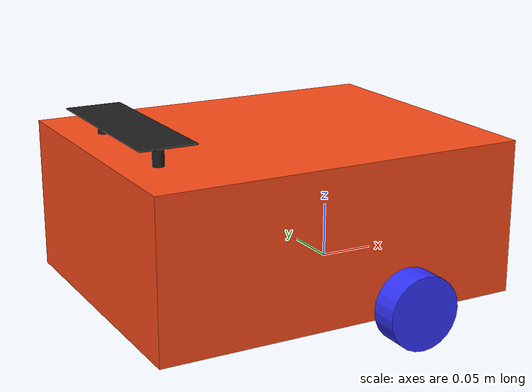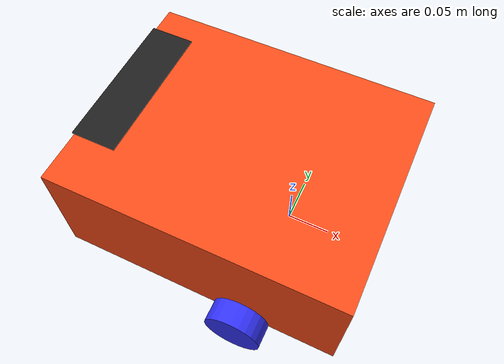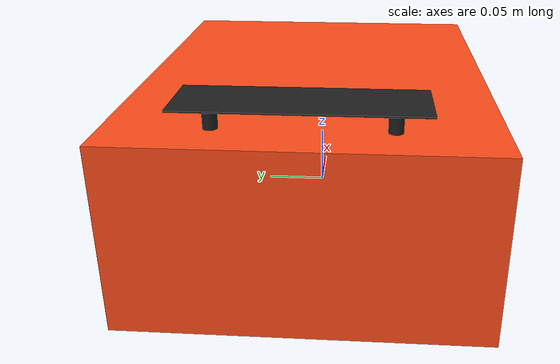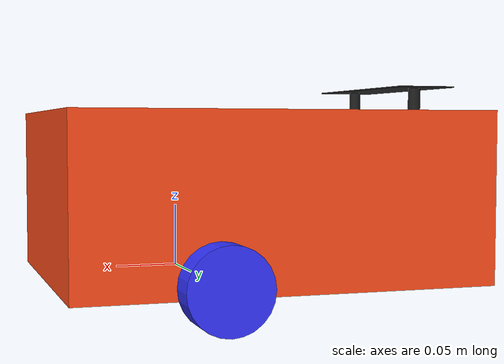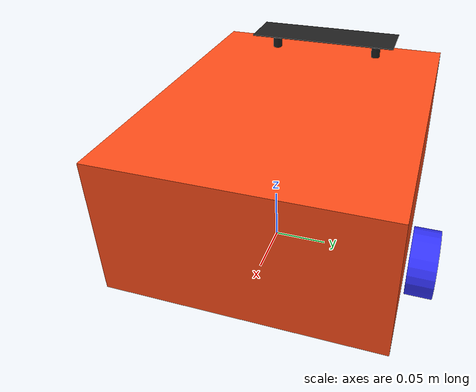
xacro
<?xml version="1.0" ?>
<robot name='robot' xmlns:xacro="http://ros.org/wiki/xacro">

    <xacro:include filename="gazebo.urdf.xacro" />
    <!--xacro:include filename="$(find robot_description)/urdf/lidar.urdf.xacro" /-->
    <!--xacro:include filename="$(find robot_description)/urdf/depth.urdf.xacro" /-->

    <xacro:property name="chassis_length" value="0.335"/>
    <xacro:property name="chassis_width" value="0.265"/>
    <xacro:property name="chassis_height" value="0.138"/>
    <xacro:property name="wheel_radius" value="0.033"/>
    <xacro:property name="wheel_thickness" value="0.026"/>
    <xacro:property name="wheel_mass" value="0.05"/>
    <xacro:property name="wheel_offset_x" value="0.226"/>
    <xacro:property name="wheel_offset_y" value="0.1485"/>
    <xacro:property name="wheel_offset_z" value="0.01"/>
    <xacro:property name="caster_wheel_radius" value="0.01"/>
    <xacro:property name="caster_wheel_mass" value="0.01"/>
    <xacro:property name="caster_wheel_offset_x" value="0.075"/>
    <xacro:property name="caster_wheel_offset_z" value="${wheel_offset_z - wheel_radius + caster_wheel_radius}"/>
    <xacro:property name="spoiler_legs_radius" value="0.005"/>
    <xacro:property name="spoiler_legs_length" value="0.02"/>
    <xacro:property name="spoiler_legs_offset_x" value="${chassis_length - 0.3}"/>
    <xacro:property name="spoiler_left_leg_offset_y" value="${0.06}"/>
    <xacro:property name="spoiler_legs_offset_z" value="${chassis_height+spoiler_legs_length/2}"/>
    <xacro:property name="spoiler_right_leg_offset_y" value="${-0.06}"/>
    <xacro:property name="spoiler_wing_length" value="${0.05}"/>
    <xacro:property name="spoiler_wing_width" value="${chassis_width - 0.1}"/>
    <xacro:property name="spoiler_wing_height" value="${0.001}"/>
    <xacro:property name="spoiler_wing_offset_x" value="${spoiler_legs_offset_x}"/>
    <xacro:property name="spoiler_wing_offset_z" value="${chassis_height + spoiler_legs_length}"/>
    <xacro:property name="mass" value="1.0"/>

    <material name="white">
        <color rgba="1 1 1 1" />
    </material>

    <material name="orange">
        <color rgba="1 0.3 0.1 1"/>
    </material>

    <material name="blue">
        <color rgba="0.2 0.2 1 1"/>
    </material>

    <material name="black">
        <color rgba="0 0 0 1"/>
    </material>

    <material name="red">
        <color rgba="1 0 0 1"/>
    </material>

    <link name="base_link">
    </link>

    <link name="base_footprint">
    </link>

    <joint name="base_footprint_joint" type="fixed">
        <parent link="base_link"/>
        <child link="base_footprint"/>
        <origin xyz="0 0 -0.138" rpy="0 0 0"/>
    </joint>

    <joint name="chassis_joint" type="fixed">
        <parent link="base_link"/>
        <child link="chassis"/>
        <origin xyz="${-wheel_offset_x} 0 ${-wheel_offset_z}"/>
    </joint>

    <link name='chassis'>

    <inertial>
        <origin xyz="${chassis_length/2} 0 ${chassis_height/2}" rpy="0 0 0"/>
        <mass value="${mass}" />
        <inertia ixx="${(1/12) * mass * (chassis_width*chassis_width+chassis_height*chassis_height)}" ixy="0.0" ixz="0.0"
                 iyy="${(1/12) * mass * (chassis_length*chassis_length+chassis_height*chassis_height)}" iyz="0.0"
                 izz="${(1/12) * mass * (chassis_length*chassis_length+chassis_width*chassis_width)}" />
    </inertial>
    <visual>
        <origin xyz="${chassis_length/2} 0 ${chassis_height/2}"/>
        <geometry>
            <box size="${chassis_length} ${chassis_width} ${chassis_height}"/>
        </geometry>
        <material name="orange"/>
    </visual>
    <collision>
        <origin xyz="${chassis_length/2} 0 ${chassis_height/2}"/>
        <geometry>
            <box size="${chassis_length} ${chassis_width} ${chassis_height}"/>
        </geometry>
    </collision>
    </link>

    <gazebo reference="chassis">
        <material>Gazebo/Orange</material>
    </gazebo>

    <joint name="left_wheel_joint" type="continuous">
        <parent link="base_link"/>
        <child link="left_wheel"/>
        <origin xyz="0 ${wheel_offset_y} 0" rpy="-${pi/2} 0 0" />
        <axis xyz="0 0 1"/>
    </joint>

    <link name="left_wheel">
        <visual>
            <geometry>
                <cylinder radius="${wheel_radius}" length="${wheel_thickness}"/>
            </geometry>
            <material name="blue"/>
        </visual>
        <collision>
            <geometry>
                <sphere radius="${wheel_radius}"/>
            </geometry>
        </collision>
        <inertial>
            <origin xyz="0 0 0" rpy="0 0 0"/>
            <mass value="${wheel_mass}" />
            <inertia ixx="${(1/12) * wheel_mass * (3*wheel_radius*wheel_radius + wheel_thickness*wheel_thickness)}" ixy="0.0" ixz="0.0"
                     iyy="${(1/12) * wheel_mass * (3*wheel_radius*wheel_radius + wheel_thickness*wheel_thickness)}" iyz="0.0"
                     izz="${(1/2) * wheel_mass * (wheel_radius*wheel_radius)}" />
        </inertial>
    </link>

    <gazebo reference="left_wheel">
        <material>Gazebo/Blue</material>
    </gazebo>

    <joint name="right_wheel_joint" type="continuous">
        <parent link="base_link"/>
        <child link="right_wheel"/>
        <origin xyz="0 ${-wheel_offset_y} 0" rpy="${pi/2} 0 0" />
        <axis xyz="0 0 -1"/>
    </joint>

    <link name="right_wheel">
        <visual>
            <geometry>
                <cylinder radius="${wheel_radius}" length="${wheel_thickness}"/>
            </geometry>
            <material name="blue"/>
        </visual>
        <collision>
            <geometry>
                <sphere radius="${wheel_radius}"/>
            </geometry>
        </collision>
        <inertial>
            <origin xyz="0 0 0" rpy="0 0 0"/>
            <mass value="${wheel_mass}" />
            <inertia ixx="${(1/12) * wheel_mass * (3*wheel_radius*wheel_radius + wheel_thickness*wheel_thickness)}" ixy="0.0" ixz="0.0"
                     iyy="${(1/12) * wheel_mass * (3*wheel_radius*wheel_radius + wheel_thickness*wheel_thickness)}" iyz="0.0"
                     izz="${(1/2) * wheel_mass * (wheel_radius*wheel_radius)}" />
        </inertial>
    </link>

    <gazebo reference="right_wheel">
        <material>Gazebo/Blue</material>
    </gazebo>

    <joint name="caster_wheel_joint" type="fixed">
        <parent link="chassis"/>
        <child link="caster_wheel"/>
        <origin xyz="${caster_wheel_offset_x} 0 ${caster_wheel_offset_z}"/>
    </joint>

    <link name="caster_wheel">
        <visual>
            <geometry>
                <sphere radius="${caster_wheel_radius}"/>
            </geometry>
            <material name="white"/>
        </visual>
        <collision>
            <geometry>
                <sphere radius="${caster_wheel_radius}"/>
            </geometry>
        </collision>
        <inertial>
            <origin xyz="0 0 0" rpy="0 0 0"/>
            <mass value="${caster_wheel_mass}" />
            <inertia ixx="${(2/5) * caster_wheel_mass * (caster_wheel_radius*caster_wheel_radius)}" ixy="0.0" ixz="0.0"
                     iyy="${(2/5) * caster_wheel_mass * (caster_wheel_radius*caster_wheel_radius)}" iyz="0.0"
                     izz="${(2/5) * caster_wheel_mass * (caster_wheel_radius*caster_wheel_radius)}" />
        </inertial>
    </link>

    <gazebo reference="caster_wheel">
        <material>Gazebo/White</material>
        <mu1 value="0.001"/>
        <mu2 value="0.001"/>
    </gazebo>
    <!--Spoiler Left Leg-->
    <link name="spoiler_left_leg">
        <visual>
            <geometry>
                <cylinder radius="${spoiler_legs_radius}" length="${spoiler_legs_length}"/>
            </geometry>
        </visual>
        <collision>
            <geometry>
                <cylinder radius="${spoiler_legs_radius}" length="${spoiler_legs_length}"/>
            </geometry>
        </collision>
    </link>

    <gazebo reference="spoiler_left_leg">
        <material>Gazebo/Black</material>
    </gazebo>

    <!--Spoiler Right Leg-->
    <link name="spoiler_right_leg">
        <visual>
            <geometry>
                <cylinder radius="${spoiler_legs_radius}" length="${spoiler_legs_length}"/>
            </geometry>
        </visual>
        <collision>
            <geometry>
                <cylinder radius="${spoiler_legs_radius}" length="${spoiler_legs_length}"/>
            </geometry>
        </collision>
    </link>

    <gazebo reference="spoiler_right_leg">
        <material>Gazebo/Black</material>
    </gazebo>
    <!--Spoiler Wing-->
    <link name="spoiler_wing">
        <visual>
            <geometry>
                <box size="${spoiler_wing_length} ${spoiler_wing_width} ${spoiler_wing_height}"/>
            </geometry>
        </visual>
        <collision>
            <geometry>
                <box size="${spoiler_wing_length} ${spoiler_wing_width} ${spoiler_wing_height}"/>
            </geometry>
        </collision>
    </link>
    <gazebo reference="spoiler_wing">
        <material>Gazebo/Black</material>
    </gazebo>

    <!--Spoiler Left Leg-->
    <joint name="spoiler_left_leg_joint" type="fixed">
        <parent link="chassis"/>
        <child link="spoiler_left_leg"/>
        <origin xyz="${spoiler_legs_offset_x} ${spoiler_left_leg_offset_y} ${spoiler_legs_offset_z}"/>
    </joint>

    <!--Spoiler Right Leg-->
    <joint name="spoiler_right_leg_joint" type="fixed">
        <parent link="chassis"/>
        <child link="spoiler_right_leg"/>
        <origin xyz="${spoiler_legs_offset_x} ${spoiler_right_leg_offset_y} ${spoiler_legs_offset_z}"/>
    </joint>

    <!--Spoiler Wing-->
    <joint name="spoiler_wing_joint" type="fixed">
        <parent link="chassis"/>
        <child link="spoiler_wing"/>
        <origin xyz="${spoiler_wing_offset_x} 0 ${spoiler_wing_offset_z}"/>
    </joint>

</robot>
